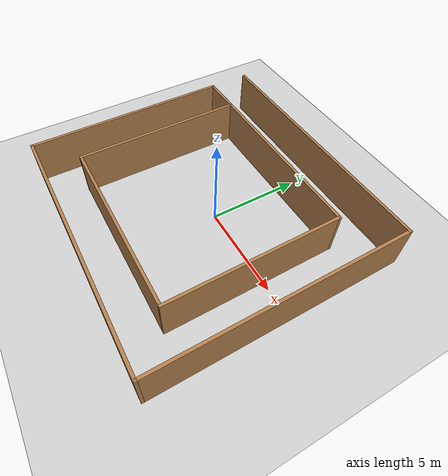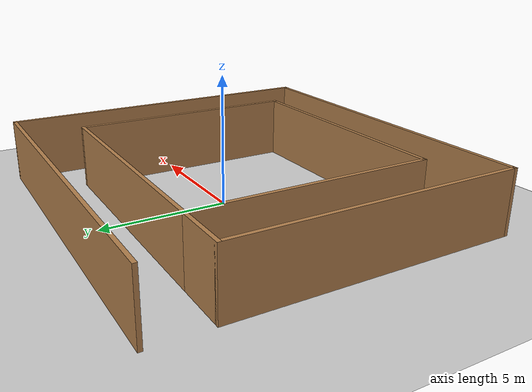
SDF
<sdf version="1.7">
 <world name="default">
  <model name="ground_plane">
   <static>1</static>
   <link name="link">
    <collision name="collision">
     <geometry><plane><normal>0 0 1</normal><size>100 100</size></plane></geometry>
     <surface><friction><ode><mu>100</mu><mu2>50</mu2></ode></friction></surface>
    </collision>
    <visual name="visual">
     <cast_shadows>0</cast_shadows>
     <geometry><plane><normal>0 0 1</normal><size>100 100</size></plane></geometry>
     <material>
      <script><uri>file://media/materials/scripts/gazebo.material</uri><name>Gazebo/Grey</name></script>
     </material>
    </visual>
   </link>
  </model>
  <light name="sun" type="directional">
   <pose>0 0 10 0 -0 0</pose>
   <diffuse>0.8 0.8 0.8 1</diffuse>
   <specular>0.2 0.2 0.2 1</specular>
   <attenuation>
    <range>1000</range>
    <constant>0.9</constant>
    <linear>0.01</linear>
    <quadratic>0.001</quadratic>
   </attenuation>
   <direction>-0.5 0.1 -0.9</direction>
   <spot><inner_angle>0</inner_angle><outer_angle>0</outer_angle><falloff>0</falloff></spot>
  </light>
  <scene><shadows>0</shadows><ambient>0.4 0.4 0.4 1</ambient><background>0.7 0.7 0.7 1</background></scene>
  <physics type="ode">
   <real_time_update_rate>1000</real_time_update_rate>
   <max_step_size>0.001</max_step_size>
   <real_time_factor>1</real_time_factor>
   <ode>
    <solver>
     <type>quick</type>
     <iters>150</iters>
     <precon_iters>0</precon_iters>
     <sor>1.4</sor>
     <use_dynamic_moi_rescaling>1</use_dynamic_moi_rescaling>
    </solver>
    <constraints>
     <cfm>1e-05</cfm>
     <erp>0.2</erp>
     <contact_max_correcting_vel>2000</contact_max_correcting_vel>
     <contact_surface_layer>0.01</contact_surface_layer>
    </constraints>
   </ode>
  </physics>
  <gravity>0 0 -9.8</gravity>
  <magnetic_field>6e-06 2.3e-05 -4.2e-05</magnetic_field>
  <atmosphere type="adiabatic"/>
  <audio><device>default</device></audio>
  <spherical_coordinates>
   <surface_model>EARTH_WGS84</surface_model>
   <latitude_deg>0</latitude_deg>
   <longitude_deg>0</longitude_deg>
   <elevation>0</elevation>
   <heading_deg>0</heading_deg>
  </spherical_coordinates>
  <model name="square_maze">
   <pose>-0.302097 -0.448197 0 0 -0 0</pose>
   <link name="Wall_11">
    <collision name="Wall_11_Collision">
     <geometry><box><size>14 0.15 2.5</size></box></geometry>
     <pose>0 0 1.25 0 -0 0</pose>
    </collision>
    <visual name="Wall_11_Visual">
     <pose>0 0 1.25 0 -0 0</pose>
     <geometry><box><size>14 0.15 2.5</size></box></geometry>
     <material>
      <script><uri>file://media/materials/scripts/gazebo.material</uri><name>Gazebo/Wood</name></script>
      <ambient>0.996078 0.47451 0.0196078 1</ambient>
     </material>
     <meta><layer>0</layer></meta>
    </visual>
    <pose>0 6.675 0 0 -0 0</pose>
   </link>
   <link name="Wall_12">
    <collision name="Wall_12_Collision">
     <geometry><box><size>13.5 0.15 2.5</size></box></geometry>
     <pose>0 0 1.25 0 -0 0</pose>
    </collision>
    <visual name="Wall_12_Visual">
     <pose>0 0 1.25 0 -0 0</pose>
     <geometry><box><size>13.5 0.15 2.5</size></box></geometry>
     <material>
      <script><uri>file://media/materials/scripts/gazebo.material</uri><name>Gazebo/Wood</name></script>
      <ambient>0.996078 0.47451 0.0196078 1</ambient>
     </material>
     <meta><layer>0</layer></meta>
    </visual>
    <pose>6.925 -0 0 0 -0 -1.5708</pose>
   </link>
   <link name="Wall_13">
    <collision name="Wall_13_Collision">
     <geometry><box><size>14 0.15 2.5</size></box></geometry>
     <pose>0 0 1.25 0 -0 0</pose>
    </collision>
    <visual name="Wall_13_Visual">
     <pose>0 0 1.25 0 -0 0</pose>
     <geometry><box><size>14 0.15 2.5</size></box></geometry>
     <material>
      <script><uri>file://media/materials/scripts/gazebo.material</uri><name>Gazebo/Wood</name></script>
      <ambient>0.996078 0.47451 0.0196078 1</ambient>
     </material>
     <meta><layer>0</layer></meta>
    </visual>
    <pose>0 -6.675 0 0 -0 3.14159</pose>
   </link>
   <link name="Wall_14">
    <collision name="Wall_14_Collision">
     <geometry><box><size>11.25 0.15 2.5</size></box></geometry>
     <pose>0 0 1.25 0 -0 0</pose>
    </collision>
    <visual name="Wall_14_Visual">
     <pose>0 0 1.25 0 -0 0</pose>
     <geometry><box><size>11.25 0.15 2.5</size></box></geometry>
     <material>
      <script><uri>file://media/materials/scripts/gazebo.material</uri><name>Gazebo/Wood</name></script>
      <ambient>0.996078 0.47451 0.0196078 1</ambient>
     </material>
     <meta><layer>0</layer></meta>
    </visual>
    <pose>-6.925 -1.125 0 0 -0 1.5708</pose>
   </link>
   <link name="Wall_15">
    <collision name="Wall_15_Collision">
     <geometry><box><size>2.25 0.15 2.5</size></box></geometry>
     <pose>0 0 1.25 0 -0 0</pose>
    </collision>
    <visual name="Wall_15_Visual">
     <pose>0 0 1.25 0 -0 0</pose>
     <geometry><box><size>2.25 0.15 2.5</size></box></geometry>
     <material>
      <script><uri>file://media/materials/scripts/gazebo.material</uri><name>Gazebo/Wood</name></script>
      <ambient>0.996078 0.47451 0.0196078 1</ambient>
     </material>
     <meta><layer>0</layer></meta>
    </visual>
    <pose>-5.875 4.425 0 0 -0 0</pose>
   </link>
   <link name="Wall_16">
    <collision name="Wall_16_Collision">
     <geometry><box><size>9.25 0.15 2.5</size></box></geometry>
     <pose>0 0 1.25 0 -0 0</pose>
    </collision>
    <visual name="Wall_16_Visual">
     <pose>0 0 1.25 0 -0 0</pose>
     <geometry><box><size>9.25 0.15 2.5</size></box></geometry>
     <material>
      <script><uri>file://media/materials/scripts/gazebo.material</uri><name>Gazebo/Wood</name></script>
      <ambient>0.898039 0.647059 0.0392157 1</ambient>
     </material>
     <meta><layer>0</layer></meta>
    </visual>
    <pose>-4.825 -0.125 0 0 -0 -1.5708</pose>
   </link>
   <link name="Wall_17">
    <collision name="Wall_17_Collision">
     <geometry><box><size>9.75 0.15 2.5</size></box></geometry>
     <pose>0 0 1.25 0 -0 0</pose>
    </collision>
    <visual name="Wall_17_Visual">
     <pose>0 0 1.25 0 -0 0</pose>
     <geometry><box><size>9.75 0.15 2.5</size></box></geometry>
     <material>
      <script><uri>file://media/materials/scripts/gazebo.material</uri><name>Gazebo/Wood</name></script>
      <ambient>0.996078 0.47451 0.0196078 1</ambient>
     </material>
     <meta><layer>0</layer></meta>
    </visual>
    <pose>-0.025 -4.675 0 0 -0 0</pose>
   </link>
   <link name="Wall_18">
    <collision name="Wall_18_Collision">
     <geometry><box><size>9.25 0.15 2.5</size></box></geometry>
     <pose>0 0 1.25 0 -0 0</pose>
    </collision>
    <visual name="Wall_18_Visual">
     <pose>0 0 1.25 0 -0 0</pose>
     <geometry><box><size>9.25 0.15 2.5</size></box></geometry>
     <material>
      <script><uri>file://media/materials/scripts/gazebo.material</uri><name>Gazebo/Wood</name></script>
      <ambient>1 1 1 1</ambient>
     </material>
     <meta><layer>0</layer></meta>
    </visual>
    <pose>4.775 -0.125 0 0 -0 1.5708</pose>
   </link>
   <link name="Wall_19">
    <collision name="Wall_19_Collision">
     <geometry><box><size>9.75 0.15 2.5</size></box></geometry>
     <pose>0 0 1.25 0 -0 0</pose>
    </collision>
    <visual name="Wall_19_Visual">
     <pose>0 0 1.25 0 -0 0</pose>
     <geometry><box><size>9.75 0.15 2.5</size></box></geometry>
     <material>
      <script><uri>file://media/materials/scripts/gazebo.material</uri><name>Gazebo/Wood</name></script>
      <ambient>0.898039 0.647059 0.0392157 1</ambient>
     </material>
     <meta><layer>0</layer></meta>
    </visual>
    <pose>-0.025 4.425 0 0 -0 3.14159</pose>
   </link>
   <static>1</static>
  </model>
 </world>
</sdf>
